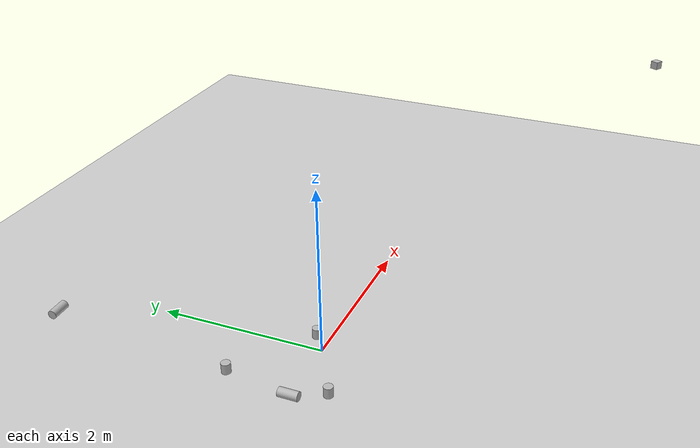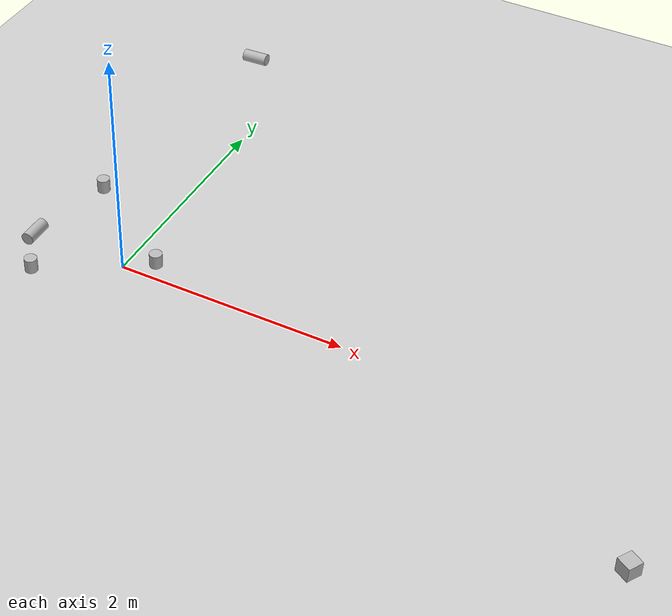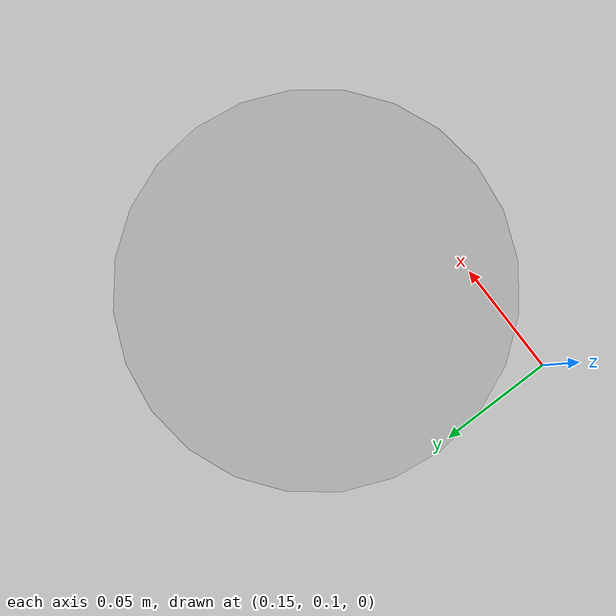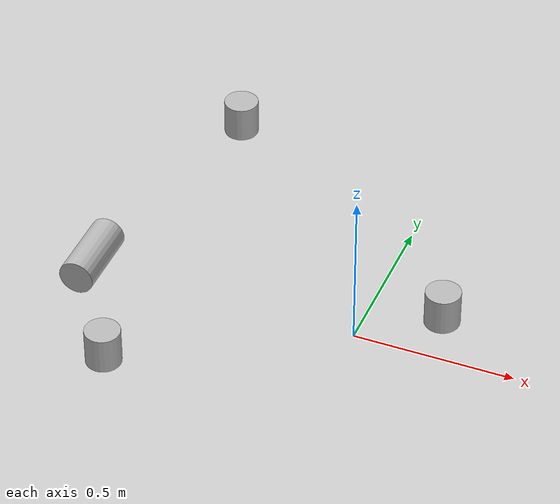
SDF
<sdf version="1.4">
 <world name="default">
  <include><uri>model://ground_plane</uri></include>
  <include><uri>model://sun</uri></include>
  <model name="rh_camera">
   <pose>5 -2.7 2 0 -0 2.6</pose>
   <link name="link">
    <inertial>
     <mass>0.1</mass>
     <inertia>
      <ixx>0.000166667</ixx>
      <iyy>0.000166667</iyy>
      <izz>0.000166667</izz>
      <ixy>0</ixy>
      <ixz>0</ixz>
      <iyz>0</iyz>
     </inertia>
    </inertial>
    <collision name="collision"><geometry><box><size>0.1 0.1 0.1</size></box></geometry></collision>
    <visual name="visual"><geometry><box><size>0.1 0.1 0.1</size></box></geometry></visual>
    <sensor name="camera" type="camera">
     <camera name="__default__">
      <horizontal_fov>1.047</horizontal_fov>
      <image><width>320</width><height>240</height></image>
      <clip><near>0.1</near><far>100</far></clip>
     </camera>
     <always_on>1</always_on>
     <update_rate>30</update_rate>
     <visualize>1</visualize>
     <plugin name="gazebo_ros_camera" filename="libgazebo_ros_camera.so">
      <cameraName>rh_camera</cameraName>
      <alwaysOn>true</alwaysOn>
      <updateRate>10</updateRate>
      <imageTopicName>rgb/image_raw</imageTopicName>
      <depthImageTopicName>depth/image_raw</depthImageTopicName>
      <pointCloudTopicName>depth/points</pointCloudTopicName>
      <cameraInfoTopicName>rgb/camera_info</cameraInfoTopicName>
      <depthImageCameraInfoTopicName>depth/camera_info</depthImageCameraInfoTopicName>
      <frameName>camera_depth_optical_frame</frameName>
      <baseline>0.1</baseline>
      <distortion_k1>0.0</distortion_k1>
      <distortion_k2>0.0</distortion_k2>
      <distortion_k3>0.0</distortion_k3>
      <distortion_t1>0.0</distortion_t1>
      <distortion_t2>0.0</distortion_t2>
      <pointCloudCutoff>0.4</pointCloudCutoff>
      <robotNamespace>/</robotNamespace>
     </plugin>
    </sensor>
    <gravity>0</gravity>
   </link>
  </model>
  <model name="beer">
   <link name="link">
    <pose>0.3 0.8 0 0 -0 -2.2</pose>
    <inertial>
     <mass>0.39</mass>
     <inertia><ixx>0.00058</ixx><ixy>0</ixy><ixz>0</ixz><iyy>0.00058</iyy><iyz>0</iyz><izz>0.00019</izz></inertia>
    </inertial>
    <collision name="collision">
     <geometry><cylinder><radius>0.055</radius><length>0.23</length></cylinder></geometry>
    </collision>
    <visual name="visual">
     <geometry><cylinder><radius>0.055</radius><length>0.23</length></cylinder></geometry>
     <material>
      <script>
       <uri>model://beer/materials/scripts</uri>
       <uri>model://beer/materials/textures</uri>
       <name>Beer/Diffuse</name>
      </script>
     </material>
    </visual>
   </link>
   <pose>-1 0 0 0 -0 0</pose>
  </model>
  <model name="beer_0">
   <link name="link">
    <pose>0.5 0.16 0.05 1.6 -.8 -1.57</pose>
    <inertial>
     <mass>0.39</mass>
     <inertia><ixx>0.00058</ixx><ixy>0</ixy><ixz>0</ixz><iyy>0.00058</iyy><iyz>0</iyz><izz>0.00019</izz></inertia>
    </inertial>
    <collision name="collision">
     <geometry><cylinder><radius>0.055</radius><length>0.23</length></cylinder></geometry>
    </collision>
    <visual name="visual">
     <geometry><cylinder><radius>0.055</radius><length>0.23</length></cylinder></geometry>
     <material>
      <script>
       <uri>model://beer/materials/scripts</uri>
       <uri>model://beer/materials/textures</uri>
       <name>Beer/Diffuse</name>
      </script>
     </material>
    </visual>
   </link>
   <pose>-1 3 0 0 -0 0</pose>
  </model>
  <model name="beer_1">
   <link name="link">
    <pose>1.22 .6 0  0 -0 0</pose>
    <inertial>
     <mass>0.39</mass>
     <inertia><ixx>0.00058</ixx><ixy>0</ixy><ixz>0</ixz><iyy>0.00058</iyy><iyz>0</iyz><izz>0.00019</izz></inertia>
    </inertial>
    <collision name="collision">
     <geometry><cylinder><radius>0.055</radius><length>0.23</length></cylinder></geometry>
    </collision>
    <visual name="visual">
     <geometry><cylinder><radius>0.055</radius><length>0.23</length></cylinder></geometry>
     <material>
      <script>
       <uri>model://beer/materials/scripts</uri>
       <uri>model://beer/materials/textures</uri>
       <name>Beer/Diffuse</name>
      </script>
     </material>
    </visual>
   </link>
   <pose>-1 -0.43884 0 0 -0 0</pose>
  </model>
  <model name="beer_2">
   <link name="link">
    <pose>0.94 0.15 0 0 -0 0</pose>
    <inertial>
     <mass>0.39</mass>
     <inertia><ixx>0.00058</ixx><ixy>0</ixy><ixz>0</ixz><iyy>0.00058</iyy><iyz>0</iyz><izz>0.00019</izz></inertia>
    </inertial>
    <collision name="collision">
     <geometry><cylinder><radius>0.055</radius><length>0.23</length></cylinder></geometry>
    </collision>
    <visual name="visual">
     <geometry><cylinder><radius>0.055</radius><length>0.23</length></cylinder></geometry>
     <material>
      <script>
       <uri>model://beer/materials/scripts</uri>
       <uri>model://beer/materials/textures</uri>
       <name>Beer/Diffuse</name>
      </script>
     </material>
    </visual>
   </link>
   <pose>-1.58483 -0.525461 0 0 -0 0</pose>
  </model>
  <model name="beer_3">
   <link name="link">
    <pose>0.7 -0.022 0.06 -1.57 0 0</pose>
    <inertial>
     <mass>0.39</mass>
     <inertia><ixx>0.00058</ixx><ixy>0</ixy><ixz>0</ixz><iyy>0.00058</iyy><iyz>0</iyz><izz>0.00019</izz></inertia>
    </inertial>
    <collision name="collision">
     <geometry><cylinder><radius>0.055</radius><length>0.23</length></cylinder></geometry>
    </collision>
    <visual name="visual">
     <geometry><cylinder><radius>0.055</radius><length>0.23</length></cylinder></geometry>
     <material>
      <script>
       <uri>model://beer/materials/scripts</uri>
       <uri>model://beer/materials/textures</uri>
       <name>Beer/Diffuse</name>
      </script>
     </material>
    </visual>
   </link>
   <pose>-1.54689 0 0 0 -0 0</pose>
  </model>
 </world>
</sdf>
